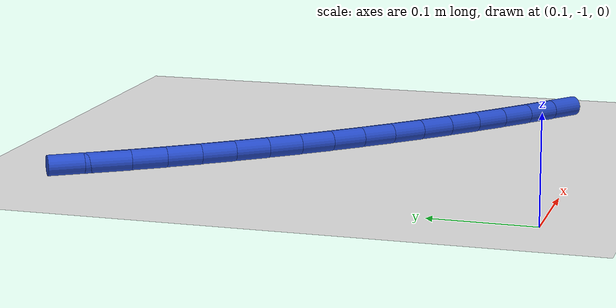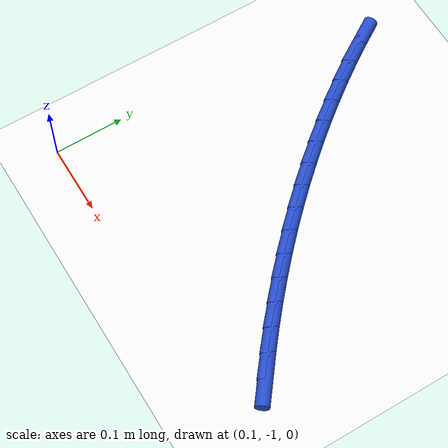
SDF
<sdf version="1.6">
 <world name="default">
  <model name="ground_plane">
   <static>1</static>
   <link name="link">
    <collision name="collision">
     <geometry><plane><normal>0 0 1</normal><size>100 100</size></plane></geometry>
     <surface><friction><ode><mu>100</mu><mu2>50</mu2></ode></friction></surface>
    </collision>
    <visual name="visual">
     <cast_shadows>0</cast_shadows>
     <geometry><plane><normal>0 0 1</normal><size>100 100</size></plane></geometry>
     <material>
      <script><uri>file://media/materials/scripts/gazebo.material</uri><name>Gazebo/WhiteGlow</name></script>
     </material>
    </visual>
   </link>
  </model>
  <model name="line">
   <link name="link_158">
    <pose>0.5244029866448429 -0.9313661185014501 0.01 0 1.57 -0.6591852415855051</pose>
    <collision name="collision">
     <geometry><cylinder><radius>0.01</radius><length>0.08</length></cylinder></geometry>
    </collision>
    <visual name="visual">
     <material>
      <script><name>Gazebo/Blue</name><uri>file://media/materials/scripts/gazebo.material</uri></script>
     </material>
     <geometry><cylinder><radius>0.01</radius><length>0.08</length></cylinder></geometry>
    </visual>
   </link>
   <link name="link_159">
    <pose>0.4969518803542181 -0.9100969953490371 0.01 0 1.57 -0.6805771364036625</pose>
    <collision name="collision">
     <geometry><cylinder><radius>0.01</radius><length>0.08</length></cylinder></geometry>
    </collision>
    <visual name="visual">
     <material>
      <script><name>Gazebo/Blue</name><uri>file://media/materials/scripts/gazebo.material</uri></script>
     </material>
     <geometry><cylinder><radius>0.01</radius><length>0.08</length></cylinder></geometry>
    </visual>
   </link>
   <link name="link_160">
    <pose>0.4699825696307067 -0.8882622000069851 0.01 0 1.57 -0.702165144372531</pose>
    <collision name="collision">
     <geometry><cylinder><radius>0.01</radius><length>0.08</length></cylinder></geometry>
    </collision>
    <visual name="visual">
     <material>
      <script><name>Gazebo/Blue</name><uri>file://media/materials/scripts/gazebo.material</uri></script>
     </material>
     <geometry><cylinder><radius>0.01</radius><length>0.08</length></cylinder></geometry>
    </visual>
   </link>
   <link name="link_161">
    <pose>0.4435093869522659 -0.8658659839867091 0.01 0 1.57 -0.7239552319259799</pose>
    <collision name="collision">
     <geometry><cylinder><radius>0.01</radius><length>0.08</length></cylinder></geometry>
    </collision>
    <visual name="visual">
     <material>
      <script><name>Gazebo/Blue</name><uri>file://media/materials/scripts/gazebo.material</uri></script>
     </material>
     <geometry><cylinder><radius>0.01</radius><length>0.08</length></cylinder></geometry>
    </visual>
   </link>
   <link name="link_162">
    <pose>0.41754666479685226 -0.842912598799625 0.01 0 1.57 -0.74595277221614</pose>
    <collision name="collision">
     <geometry><cylinder><radius>0.01</radius><length>0.08</length></cylinder></geometry>
    </collision>
    <visual name="visual">
     <material>
      <script><name>Gazebo/Blue</name><uri>file://media/materials/scripts/gazebo.material</uri></script>
     </material>
     <geometry><cylinder><radius>0.01</radius><length>0.08</length></cylinder></geometry>
    </visual>
   </link>
   <link name="link_163">
    <pose>0.39210873564242277 -0.8194062959571471 0.01 0 1.57 -0.7681624922196247</pose>
    <collision name="collision">
     <geometry><cylinder><radius>0.01</radius><length>0.08</length></cylinder></geometry>
    </collision>
    <visual name="visual">
     <material>
      <script><name>Gazebo/Blue</name><uri>file://media/materials/scripts/gazebo.material</uri></script>
     </material>
     <geometry><cylinder><radius>0.01</radius><length>0.08</length></cylinder></geometry>
    </visual>
   </link>
   <link name="link_164">
    <pose>0.367209931966934 -0.7953513269706911 0.01 0 1.57 -0.7905884182565035</pose>
    <collision name="collision">
     <geometry><cylinder><radius>0.01</radius><length>0.08</length></cylinder></geometry>
    </collision>
    <visual name="visual">
     <material>
      <script><name>Gazebo/Blue</name><uri>file://media/materials/scripts/gazebo.material</uri></script>
     </material>
     <geometry><cylinder><radius>0.01</radius><length>0.08</length></cylinder></geometry>
    </visual>
   </link>
   <link name="link_165">
    <pose>0.34286458624834276 -0.770751943351672 0.01 0 1.57 -0.8132338203379484</pose>
    <collision name="collision">
     <geometry><cylinder><radius>0.01</radius><length>0.08</length></cylinder></geometry>
    </collision>
    <visual name="visual">
     <material>
      <script><name>Gazebo/Blue</name><uri>file://media/materials/scripts/gazebo.material</uri></script>
     </material>
     <geometry><cylinder><radius>0.01</radius><length>0.08</length></cylinder></geometry>
    </visual>
   </link>
   <link name="link_166">
    <pose>0.31908703096460644 -0.7456123966115056 0.01 0 1.57 -0.8361011558454332</pose>
    <collision name="collision">
     <geometry><cylinder><radius>0.01</radius><length>0.08</length></cylinder></geometry>
    </collision>
    <visual name="visual">
     <material>
      <script><name>Gazebo/Blue</name><uri>file://media/materials/scripts/gazebo.material</uri></script>
     </material>
     <geometry><cylinder><radius>0.01</radius><length>0.08</length></cylinder></geometry>
    </visual>
   </link>
   <link name="link_167">
    <pose>0.2958915985936806 -0.7199369382616057 0.01 0 1.57 -0.8591920131333033</pose>
    <collision name="collision">
     <geometry><cylinder><radius>0.01</radius><length>0.08</length></cylinder></geometry>
    </collision>
    <visual name="visual">
     <material>
      <script><name>Gazebo/Blue</name><uri>file://media/materials/scripts/gazebo.material</uri></script>
     </material>
     <geometry><cylinder><radius>0.01</radius><length>0.08</length></cylinder></geometry>
    </visual>
   </link>
   <link name="link_168">
    <pose>0.2732926216135227 -0.6937298198133883 0.01 0 1.57 -0.8825070557374954</pose>
    <collision name="collision">
     <geometry><cylinder><radius>0.01</radius><length>0.08</length></cylinder></geometry>
    </collision>
    <visual name="visual">
     <material>
      <script><name>Gazebo/Blue</name><uri>file://media/materials/scripts/gazebo.material</uri></script>
     </material>
     <geometry><cylinder><radius>0.01</radius><length>0.08</length></cylinder></geometry>
    </visual>
   </link>
   <link name="link_169">
    <pose>0.2513044325020893 -0.6669952927782686 0.01 0 1.57 -0.9060459679626954</pose>
    <collision name="collision">
     <geometry><cylinder><radius>0.01</radius><length>0.08</length></cylinder></geometry>
    </collision>
    <visual name="visual">
     <material>
      <script><name>Gazebo/Blue</name><uri>file://media/materials/scripts/gazebo.material</uri></script>
     </material>
     <geometry><cylinder><radius>0.01</radius><length>0.08</length></cylinder></geometry>
    </visual>
   </link>
   <link name="link_170">
    <pose>0.22994136373733734 -0.6397376086676616 0.01 0 1.57 -0.9298074910425101</pose>
    <collision name="collision">
     <geometry><cylinder><radius>0.01</radius><length>0.08</length></cylinder></geometry>
    </collision>
    <visual name="visual">
     <material>
      <script><name>Gazebo/Blue</name><uri>file://media/materials/scripts/gazebo.material</uri></script>
     </material>
     <geometry><cylinder><radius>0.01</radius><length>0.08</length></cylinder></geometry>
    </visual>
   </link>
   <link name="link_171">
    <pose>0.20921775178117316 -0.611961019213395 0.01 0 1.57 -0.9540074368029305</pose>
    <collision name="collision">
     <geometry><cylinder><radius>0.01</radius><length>0.08</length></cylinder></geometry>
    </collision>
    <visual name="visual">
     <material>
      <script><name>Gazebo/Blue</name><uri>file://media/materials/scripts/gazebo.material</uri></script>
     </material>
     <geometry><cylinder><radius>0.01</radius><length>0.08</length></cylinder></geometry>
    </visual>
   </link>
   <link name="link_172">
    <pose>0.18915759180634692 -0.5836703105168535 0.01 0 1.57 -0.9793542401797785</pose>
    <collision name="collision">
     <geometry><cylinder><radius>0.01</radius><length>0.08</length></cylinder></geometry>
    </collision>
    <visual name="visual">
     <material>
      <script><name>Gazebo/Blue</name><uri>file://media/materials/scripts/gazebo.material</uri></script>
     </material>
     <geometry><cylinder><radius>0.01</radius><length>0.08</length></cylinder></geometry>
    </visual>
   </link>
   <link name="link_173">
    <pose>0.16981528152920453 -0.5548719507044841 0.01 0 1.57 -1.0060338311210384</pose>
    <collision name="collision">
     <geometry><cylinder><radius>0.01</radius><length>0.08</length></cylinder></geometry>
    </collision>
    <visual name="visual">
     <material>
      <script><name>Gazebo/Blue</name><uri>file://media/materials/scripts/gazebo.material</uri></script>
     </material>
     <geometry><cylinder><radius>0.01</radius><length>0.08</length></cylinder></geometry>
    </visual>
   </link>
  </model>
 </world>
</sdf>
